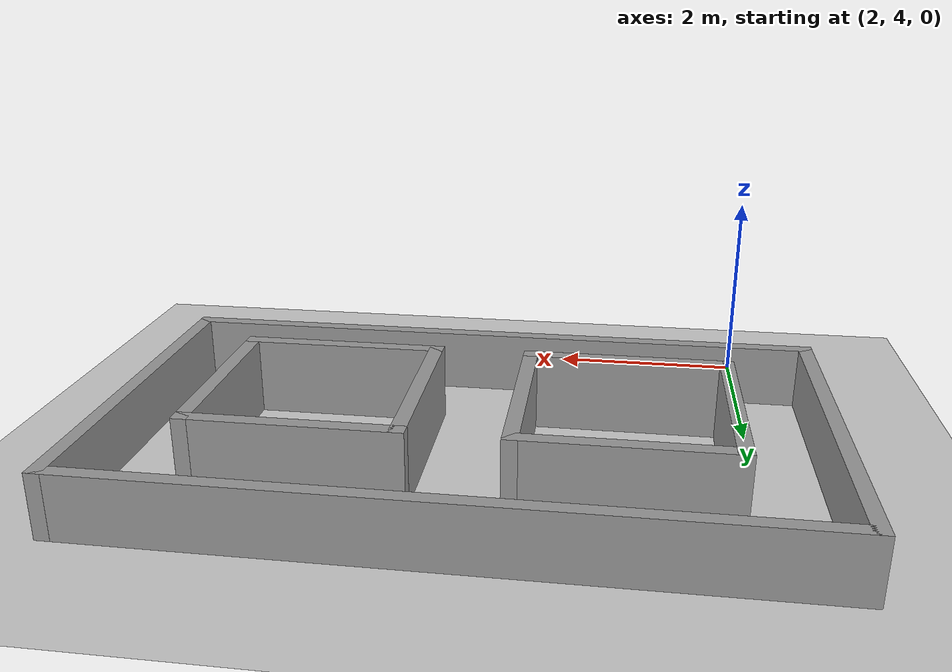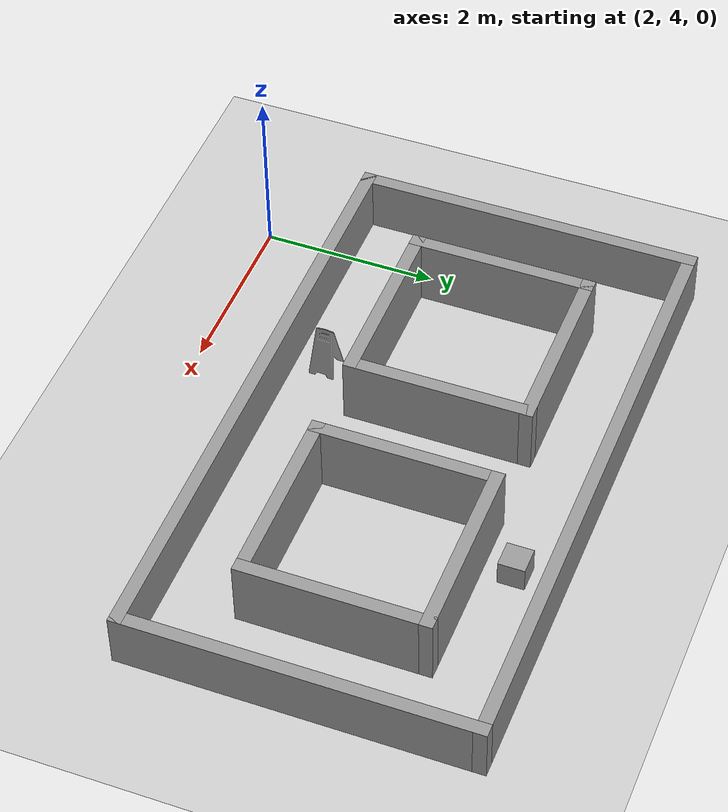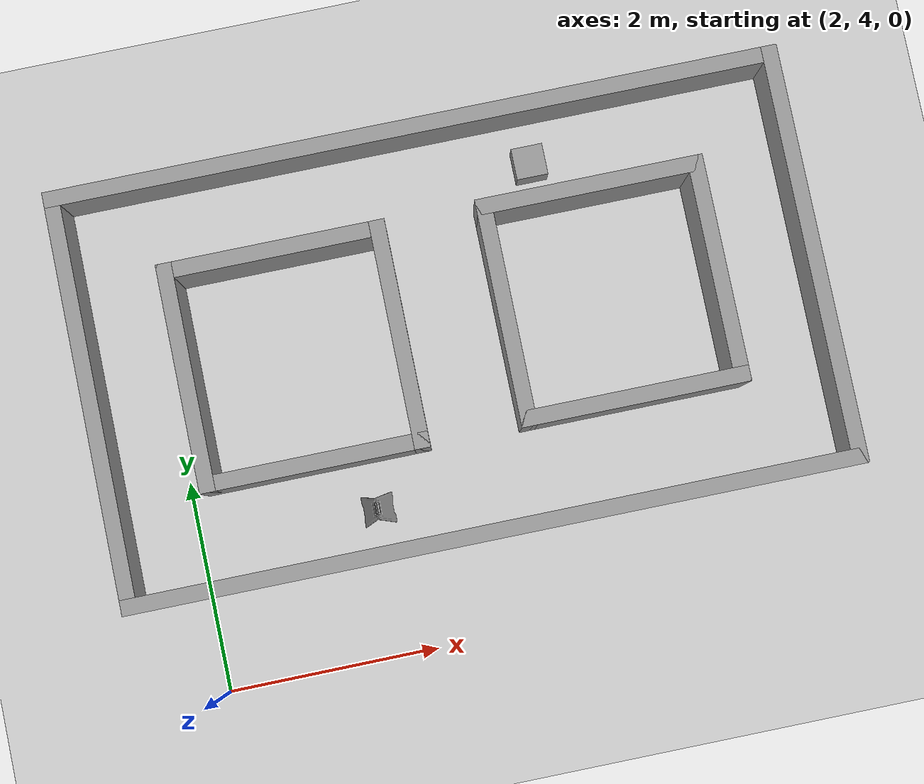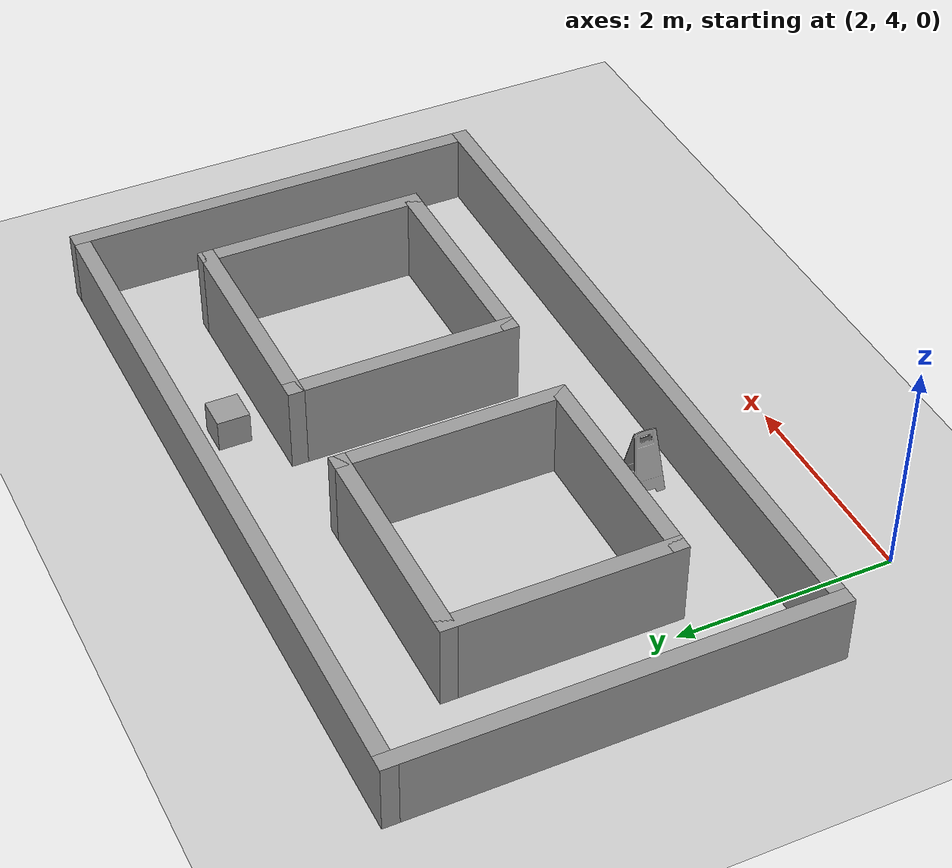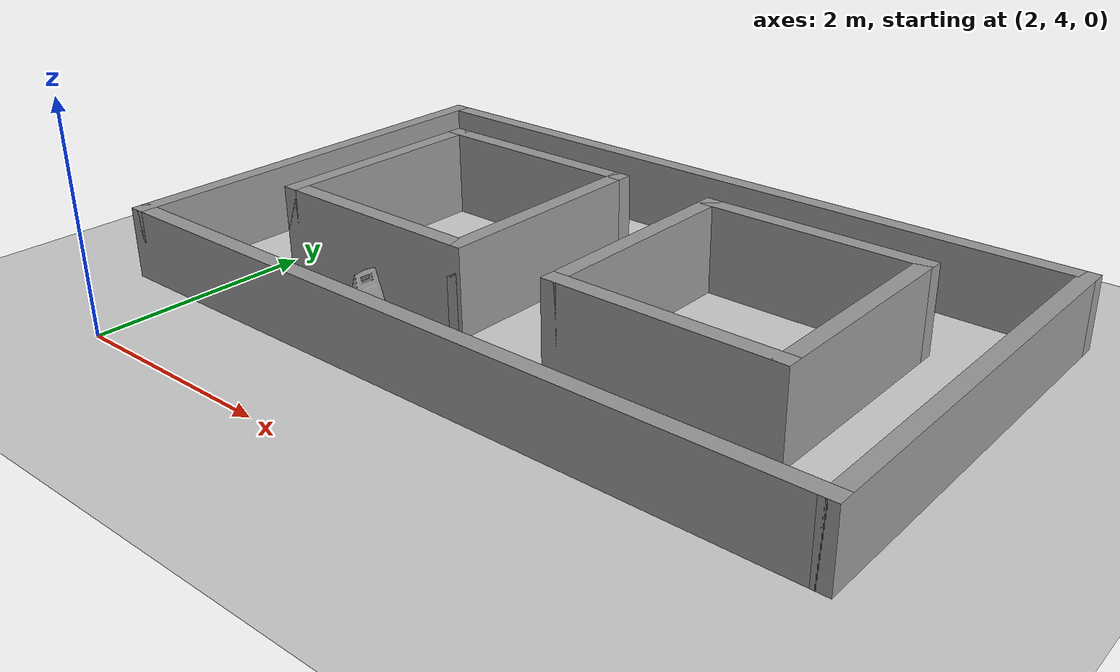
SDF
<sdf version="1.7">
 <world name="default">
  <light name="sun" type="directional">
   <pose>0 0 10 0 -0 0</pose>
   <diffuse>0.8 0.8 0.8 1</diffuse>
   <specular>0.2 0.2 0.2 1</specular>
   <attenuation>
    <range>1000</range>
    <constant>0.9</constant>
    <linear>0.01</linear>
    <quadratic>0.001</quadratic>
   </attenuation>
   <direction>-0.5 0.1 -0.9</direction>
   <spot><inner_angle>0</inner_angle><outer_angle>0</outer_angle><falloff>0</falloff></spot>
  </light>
  <model name="ground_plane">
   <static>1</static>
   <link name="link">
    <collision name="collision">
     <geometry><plane><normal>0 0 1</normal><size>100 100</size></plane></geometry>
     <surface>
      <contact><collide_bitmask>65535</collide_bitmask></contact>
      <friction><ode><mu>100</mu><mu2>50</mu2></ode></friction>
     </surface>
    </collision>
    <visual name="visual">
     <cast_shadows>0</cast_shadows>
     <geometry><plane><normal>0 0 1</normal><size>100 100</size></plane></geometry>
     <material>
      <script><uri>file://media/materials/scripts/gazebo.material</uri><name>Gazebo/Grey</name></script>
     </material>
    </visual>
   </link>
  </model>
  <gravity>0 0 -9.8</gravity>
  <magnetic_field>6e-06 2.3e-05 -4.2e-05</magnetic_field>
  <atmosphere type="adiabatic"/>
  <physics type="ode">
   <max_step_size>0.001</max_step_size>
   <real_time_factor>1</real_time_factor>
   <real_time_update_rate>1000</real_time_update_rate>
  </physics>
  <scene><ambient>0.4 0.4 0.4 1</ambient><background>0.7 0.7 0.7 1</background><shadows>1</shadows></scene>
  <audio><device>default</device></audio>
  <spherical_coordinates>
   <surface_model>EARTH_WGS84</surface_model>
   <latitude_deg>0</latitude_deg>
   <longitude_deg>0</longitude_deg>
   <elevation>0</elevation>
   <heading_deg>0</heading_deg>
  </spherical_coordinates>
  <model name="construction_7x4_v1.world">
   <pose>4.1165 4.4485 0 0 -0 0</pose>
   <link name="Wall_10">
    <collision name="Wall_10_Collision">
     <geometry><box><size>2.15 0.15 0.8</size></box></geometry>
     <pose>0 0 0.4 0 -0 0</pose>
    </collision>
    <visual name="Wall_10_Visual">
     <pose>0 0 0.4 0 -0 0</pose>
     <geometry><box><size>2.15 0.15 0.8</size></box></geometry>
     <material>
      <script><uri>file://media/materials/scripts/gazebo.material</uri><name>Gazebo/Grey</name></script>
      <ambient>1 1 1 1</ambient>
     </material>
     <meta><layer>0</layer></meta>
    </visual>
    <pose>-0.8835 3.4705 0 0 -0 3.14159</pose>
   </link>
   <link name="Wall_12">
    <collision name="Wall_12_Collision">
     <geometry><box><size>2.15 0.15 0.8</size></box></geometry>
     <pose>0 0 0.4 0 -0 0</pose>
    </collision>
    <visual name="Wall_12_Visual">
     <pose>0 0 0.4 0 -0 0</pose>
     <geometry><box><size>2.15 0.15 0.8</size></box></geometry>
     <material>
      <script><uri>file://media/materials/scripts/gazebo.material</uri><name>Gazebo/Grey</name></script>
      <ambient>1 1 1 1</ambient>
     </material>
     <meta><layer>0</layer></meta>
    </visual>
    <pose>1.1165 2.4705 0 0 -0 -1.5708</pose>
   </link>
   <link name="Wall_13">
    <collision name="Wall_13_Collision">
     <geometry><box><size>2.15 0.15 0.8</size></box></geometry>
     <pose>0 0 0.4 0 -0 0</pose>
    </collision>
    <visual name="Wall_13_Visual">
     <pose>0 0 0.4 0 -0 0</pose>
     <geometry><box><size>2.15 0.15 0.8</size></box></geometry>
     <material>
      <script><uri>file://media/materials/scripts/gazebo.material</uri><name>Gazebo/Grey</name></script>
      <ambient>1 1 1 1</ambient>
     </material>
     <meta><layer>0</layer></meta>
    </visual>
    <pose>2.1165 1.4705 0 0 -0 0</pose>
   </link>
   <link name="Wall_14">
    <collision name="Wall_14_Collision">
     <geometry><box><size>2.15 0.15 0.8</size></box></geometry>
     <pose>0 0 0.4 0 -0 0</pose>
    </collision>
    <visual name="Wall_14_Visual">
     <pose>0 0 0.4 0 -0 0</pose>
     <geometry><box><size>2.15 0.15 0.8</size></box></geometry>
     <material>
      <script><uri>file://media/materials/scripts/gazebo.material</uri><name>Gazebo/Grey</name></script>
      <ambient>1 1 1 1</ambient>
     </material>
     <meta><layer>0</layer></meta>
    </visual>
    <pose>3.1165 2.4705 0 0 -0 1.5708</pose>
   </link>
   <link name="Wall_15">
    <collision name="Wall_15_Collision">
     <geometry><box><size>2.15 0.15 0.8</size></box></geometry>
     <pose>0 0 0.4 0 -0 0</pose>
    </collision>
    <visual name="Wall_15_Visual">
     <pose>0 0 0.4 0 -0 0</pose>
     <geometry><box><size>2.15 0.15 0.8</size></box></geometry>
     <material>
      <script><uri>file://media/materials/scripts/gazebo.material</uri><name>Gazebo/Grey</name></script>
      <ambient>1 1 1 1</ambient>
     </material>
     <meta><layer>0</layer></meta>
    </visual>
    <pose>2.1165 3.4705 0 0 -0 3.14159</pose>
   </link>
   <link name="Wall_17">
    <collision name="Wall_17_Collision">
     <geometry><box><size>4 0.15 0.65</size></box></geometry>
     <pose>0 0 0.325 0 -0 0</pose>
    </collision>
    <visual name="Wall_17_Visual">
     <pose>0 0 0.325 0 -0 0</pose>
     <geometry><box><size>4 0.15 0.65</size></box></geometry>
     <material>
      <script><uri>file://media/materials/scripts/gazebo.material</uri><name>Gazebo/Grey</name></script>
      <ambient>1 1 1 1</ambient>
     </material>
     <meta><layer>0</layer></meta>
    </visual>
    <pose>-2.8085 2.4485 0 0 -0 -1.5708</pose>
   </link>
   <link name="Wall_18">
    <collision name="Wall_18_Collision">
     <geometry><box><size>7 0.15 0.65</size></box></geometry>
     <pose>0 0 0.325 0 -0 0</pose>
    </collision>
    <visual name="Wall_18_Visual">
     <pose>0 0 0.325 0 -0 0</pose>
     <geometry><box><size>7 0.15 0.65</size></box></geometry>
     <material>
      <script><uri>file://media/materials/scripts/gazebo.material</uri><name>Gazebo/Grey</name></script>
      <ambient>1 1 1 1</ambient>
     </material>
     <meta><layer>0</layer></meta>
    </visual>
    <pose>0.6165 0.5235 0 0 -0 0</pose>
   </link>
   <link name="Wall_19">
    <collision name="Wall_19_Collision">
     <geometry><box><size>4 0.15 0.65</size></box></geometry>
     <pose>0 0 0.325 0 -0 0</pose>
    </collision>
    <visual name="Wall_19_Visual">
     <pose>0 0 0.325 0 -0 0</pose>
     <geometry><box><size>4 0.15 0.65</size></box></geometry>
     <material>
      <script><uri>file://media/materials/scripts/gazebo.material</uri><name>Gazebo/Grey</name></script>
      <ambient>1 1 1 1</ambient>
     </material>
     <meta><layer>0</layer></meta>
    </visual>
    <pose>4.0415 2.4485 0 0 -0 1.5708</pose>
   </link>
   <link name="Wall_20">
    <collision name="Wall_20_Collision">
     <geometry><box><size>7 0.15 0.65</size></box></geometry>
     <pose>0 0 0.325 0 -0 0</pose>
    </collision>
    <visual name="Wall_20_Visual">
     <pose>0 0 0.325 0 -0 0</pose>
     <geometry><box><size>7 0.15 0.65</size></box></geometry>
     <material>
      <script><uri>file://media/materials/scripts/gazebo.material</uri><name>Gazebo/Grey</name></script>
      <ambient>1 1 1 1</ambient>
     </material>
     <meta><layer>0</layer></meta>
    </visual>
    <pose>0.6165 4.3735 0 0 -0 3.14159</pose>
   </link>
   <link name="Wall_7">
    <collision name="Wall_7_Collision">
     <geometry><box><size>2.15 0.15 0.8</size></box></geometry>
     <pose>0 0 0.4 0 -0 0</pose>
    </collision>
    <visual name="Wall_7_Visual">
     <pose>0 0 0.4 0 -0 0</pose>
     <geometry><box><size>2.15 0.15 0.8</size></box></geometry>
     <material>
      <script><uri>file://media/materials/scripts/gazebo.material</uri><name>Gazebo/Grey</name></script>
      <ambient>1 1 1 1</ambient>
     </material>
     <meta><layer>0</layer></meta>
    </visual>
    <pose>-1.8835 2.4705 0 0 -0 -1.5708</pose>
   </link>
   <link name="Wall_8">
    <collision name="Wall_8_Collision">
     <geometry><box><size>2.15 0.15 0.8</size></box></geometry>
     <pose>0 0 0.4 0 -0 0</pose>
    </collision>
    <visual name="Wall_8_Visual">
     <pose>0 0 0.4 0 -0 0</pose>
     <geometry><box><size>2.15 0.15 0.8</size></box></geometry>
     <material>
      <script><uri>file://media/materials/scripts/gazebo.material</uri><name>Gazebo/Grey</name></script>
      <ambient>1 1 1 1</ambient>
     </material>
     <meta><layer>0</layer></meta>
    </visual>
    <pose>-0.8835 1.4705 0 0 -0 0</pose>
   </link>
   <link name="Wall_9">
    <collision name="Wall_9_Collision">
     <geometry><box><size>2.15 0.15 0.8</size></box></geometry>
     <pose>0 0 0.4 0 -0 0</pose>
    </collision>
    <visual name="Wall_9_Visual">
     <pose>0 0 0.4 0 -0 0</pose>
     <geometry><box><size>2.15 0.15 0.8</size></box></geometry>
     <material>
      <script><uri>file://media/materials/scripts/gazebo.material</uri><name>Gazebo/Grey</name></script>
      <ambient>1 1 1 1</ambient>
     </material>
     <meta><layer>0</layer></meta>
    </visual>
    <pose>0.1165 2.4705 0 0 -0 1.5708</pose>
   </link>
   <static>1</static>
  </model>
  <model name="construction_backup_0523.world">
   <link name="link">
    <inertial>
     <mass>1</mass>
     <inertia>
      <ixx>0.166667</ixx>
      <ixy>0</ixy>
      <ixz>0</ixz>
      <iyy>0.166667</iyy>
      <iyz>0</iyz>
      <izz>0.166667</izz>
     </inertia>
    </inertial>
    <pose>1.40985 -0.410008 -0.351552 0 -0 0</pose>
    <visual name="visual">
     <geometry><box><size>0.3 0.3 0.3</size></box></geometry>
     <material>
      <script><name>Gazebo/Grey</name><uri>file://media/materials/scripts/gazebo.material</uri></script>
      <shader type="pixel"><normal_map>__default__</normal_map></shader>
      <ambient>0.3 0.3 0.3 1</ambient>
      <diffuse>0.7 0.7 0.7 1</diffuse>
      <specular>0.01 0.01 0.01 1</specular>
      <emissive>0 0 0 1</emissive>
     </material>
    </visual>
    <collision name="collision">
     <geometry><box><size>0.3 0.3 0.3</size></box></geometry>
     <surface>
      <friction>
       <ode><mu>1</mu><mu2>1</mu2><fdir1>0 0 0</fdir1><slip1>0</slip1><slip2>0</slip2></ode>
       <torsional>
        <coefficient>1</coefficient>
        <patch_radius>0</patch_radius>
        <surface_radius>0</surface_radius>
        <use_patch_radius>1</use_patch_radius>
        <ode><slip>0</slip></ode>
       </torsional>
      </friction>
      <bounce><restitution_coefficient>0</restitution_coefficient><threshold>1e+06</threshold></bounce>
      <contact>
       <collide_without_contact>0</collide_without_contact>
       <collide_without_contact_bitmask>1</collide_without_contact_bitmask>
       <collide_bitmask>1</collide_bitmask>
       <ode>
        <soft_cfm>0</soft_cfm>
        <soft_erp>0.2</soft_erp>
        <kp>1e+13</kp>
        <kd>1</kd>
        <max_vel>0.01</max_vel>
        <min_depth>0</min_depth>
       </ode>
       <bullet>
        <split_impulse>1</split_impulse>
        <split_impulse_penetration_threshold>-0.01</split_impulse_penetration_threshold>
        <soft_cfm>0</soft_cfm>
        <soft_erp>0.2</soft_erp>
        <kp>1e+13</kp>
        <kd>1</kd>
       </bullet>
      </contact>
     </surface>
    </collision>
   </link>
   <link name="link_3">
    <inertial>
     <mass>1</mass>
     <inertia>
      <ixx>0.166667</ixx>
      <ixy>0</ixy>
      <ixz>0</ixz>
      <iyy>0.166667</iyy>
      <iyz>0</iyz>
      <izz>0.166667</izz>
     </inertia>
    </inertial>
    <pose>-0.6552 -3.35103 -0.499952 0 0 -1.62088</pose>
    <visual name="visual">
     <geometry>
      <mesh><uri>/root/.gazebo/models/Sign_model/meshes/Sign_model.stl</uri><scale>1 1 1</scale></mesh>
     </geometry>
     <material>
      <lighting>1</lighting>
      <script><uri>file://media/materials/scripts/gazebo.material</uri><name>Gazebo/Grey</name></script>
      <shader type="pixel"><normal_map>__default__</normal_map></shader>
      <ambient>0.3 0.3 0.3 1</ambient>
      <diffuse>0.7 0.7 0.7 1</diffuse>
      <specular>0.01 0.01 0.01 1</specular>
      <emissive>0 0 0 1</emissive>
     </material>
    </visual>
    <collision name="collision">
     <geometry>
      <mesh><uri>/root/.gazebo/models/Sign_model/meshes/Sign_model.stl</uri><scale>1 1 1</scale></mesh>
     </geometry>
     <surface>
      <friction>
       <ode><mu>1</mu><mu2>1</mu2><fdir1>0 0 0</fdir1><slip1>0</slip1><slip2>0</slip2></ode>
       <torsional>
        <coefficient>1</coefficient>
        <patch_radius>0</patch_radius>
        <surface_radius>0</surface_radius>
        <use_patch_radius>1</use_patch_radius>
        <ode><slip>0</slip></ode>
       </torsional>
      </friction>
      <bounce><restitution_coefficient>0</restitution_coefficient><threshold>1e+06</threshold></bounce>
      <contact>
       <collide_without_contact>0</collide_without_contact>
       <collide_without_contact_bitmask>1</collide_without_contact_bitmask>
       <collide_bitmask>1</collide_bitmask>
       <ode>
        <soft_cfm>0</soft_cfm>
        <soft_erp>0.2</soft_erp>
        <kp>1e+13</kp>
        <kd>1</kd>
        <max_vel>0.01</max_vel>
        <min_depth>0</min_depth>
       </ode>
       <bullet>
        <split_impulse>1</split_impulse>
        <split_impulse_penetration_threshold>-0.01</split_impulse_penetration_threshold>
        <soft_cfm>0</soft_cfm>
        <soft_erp>0.2</soft_erp>
        <kp>1e+13</kp>
        <kd>1</kd>
       </bullet>
      </contact>
     </surface>
    </collision>
   </link>
   <static>0</static>
   <pose>4.35838 8.74433 0.5 0 -0 0</pose>
  </model>
 </world>
</sdf>
